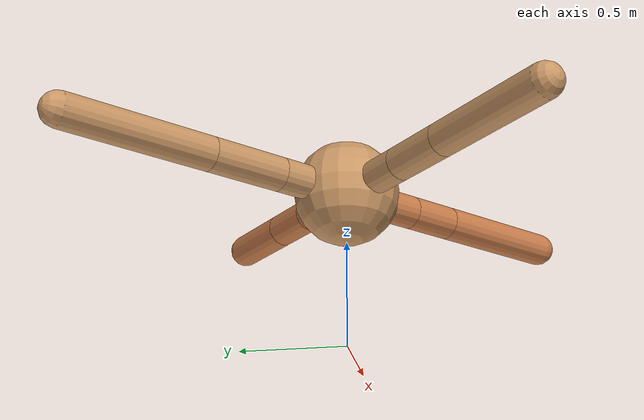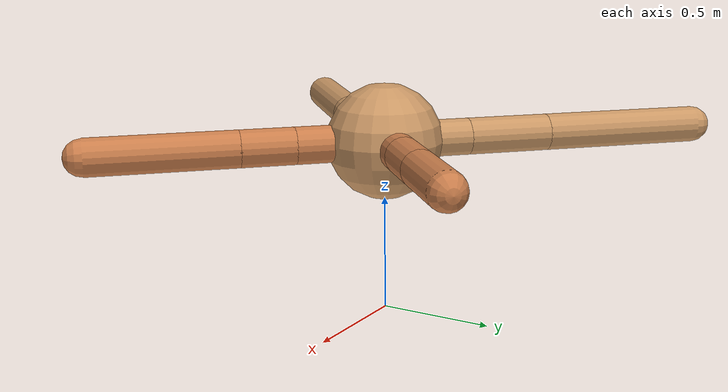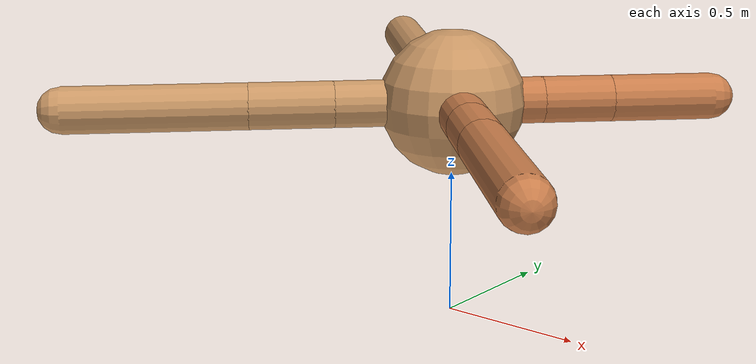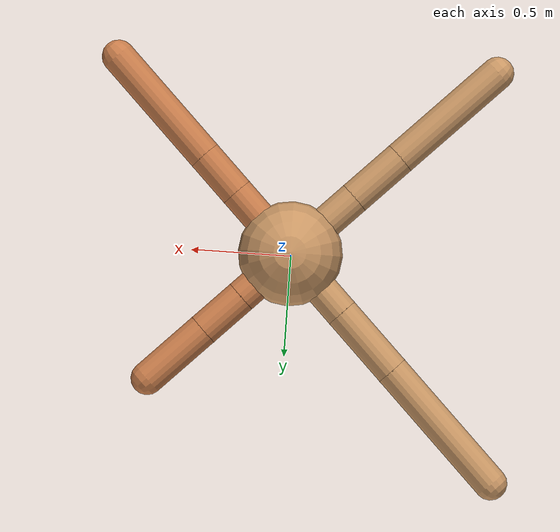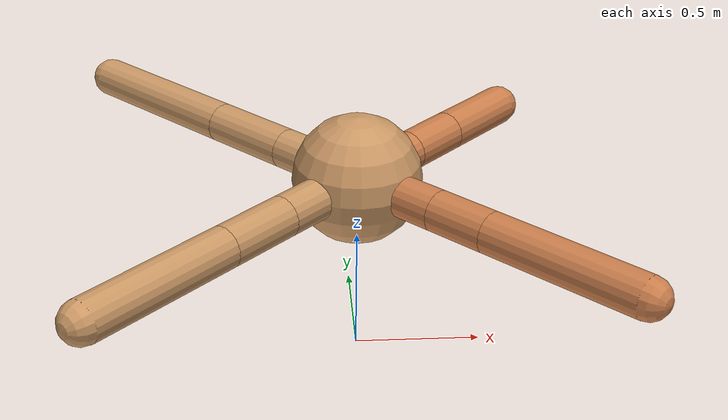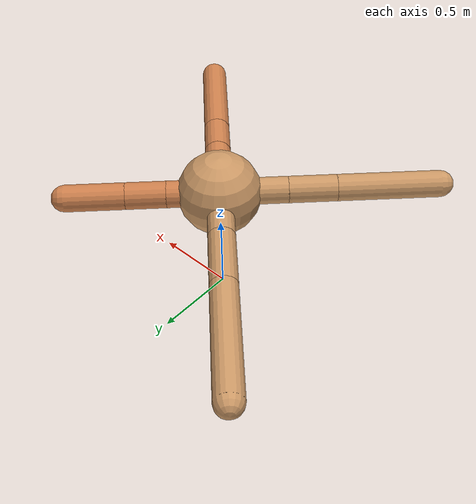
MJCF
<mujoco model="ant">
  <compiler angle="degree" coordinate="local" inertiafromgeom="true" />
  <option integrator="RK4" timestep="0.01" />
  <custom>
    <numeric data="0.0 0.0 0.55 1.0 0.0 0.0 0.0 0.0 1.0 0.0 -1.0 0.0 -1.0 0.0 1.0" name="init_qpos" />
  </custom>
  <default>
    <joint armature="1" damping="1" limited="true" />
    <geom conaffinity="0" condim="3" density="5.0" friction="1.5 0.1 0.1" margin="0.01" rgba="0.8 0.6 0.4 1" />
  </default>
  <worldbody>
    <body name="torso" pos="0 0 0.75">
      <geom name="torso_geom" pos="0 0 0" size="0.25" type="sphere" />

      <body name="front_left_leg" pos="0 0 0">
        <geom fromto="0.0 0.0 0.0 0.22019774283005483 0.22019774283005483 0.0" name="aux_1_geom" size="0.08" type="capsule" rgba=".8 .5 .3 1" />
        <body name="aux_1" pos="0.22019774283005483 0.22019774283005483 0.0">
          <joint axis="0 0 1" name="hip_1" pos="0.0 0.0 0.0" range="-40 40" type="hinge" />
          <geom fromto="0.0 0.0 0.0 0.16911578844137373 0.16911578844137373 0.0" name="left_leg_geom" size="0.08" type="capsule" rgba=".8 .5 .3 1" />
          <body pos="0.16911578844137373 0.16911578844137373 0.0" name="front_left_foot">
            <joint axis="-1 1 0" name="ankle_1" pos="0.0 0.0 0.0" range="30 100" type="hinge" />
            <geom fromto="0.0 0.0 0.0 0.24934551219040532 0.24934551219040532 0.0" name="left_ankle_geom" size="0.08" type="capsule" rgba=".8 .5 .3 1" />
          </body>
        </body>
      </body>
      <body name="front_right_leg" pos="0 0 0">
        <geom fromto="0.0 0.0 0.0 -0.2645441485378586 0.2645441485378586 0.0" name="aux_2_geom" size="0.08" type="capsule" />
        <body name="aux_2" pos="-0.2645441485378586 0.2645441485378586 0.0">
          <joint axis="0 0 1" name="hip_2" pos="0.0 0.0 0.0" range="-40 40" type="hinge" />
          <geom fromto="0.0 0.0 0.0 -0.2568321909108138 0.2568321909108138 0.0" name="right_leg_geom" size="0.08" type="capsule" />
          <body pos="-0.2568321909108138 0.2568321909108138 0.0" name="front_right_foot">
            <joint axis="1 1 0" name="ankle_2" pos="0.0 0.0 0.0" range="-100 -30" type="hinge" />
            <geom fromto="0.0 0.0 0.0 -0.5050948439265843 0.5050948439265843 0.0" name="right_ankle_geom" size="0.08" type="capsule" />
          </body>
        </body>
      </body>
      <body name="left_back_leg" pos="0 0 0">
        <geom fromto="0.0 0.0 0.0 -0.2857255395392125 -0.2857255395392125 0.0" name="aux_3_geom" size="0.08" type="capsule" />
        <body name="aux_3" pos="-0.2857255395392125 -0.2857255395392125 0.0">
          <joint axis="0 0 1" name="hip_3" pos="0.0 0.0 0.0" range="-40 40" type="hinge" />
          <geom fromto="0.0 0.0 0.0 -0.20407796656990707 -0.20407796656990707 0.0" name="back_leg_geom" size="0.08" type="capsule" />
          <body pos="-0.20407796656990707 -0.20407796656990707 0.0" name="left_back_foot">
            <joint axis="-1 1 0" name="ankle_3" pos="0.0 0.0 0.0" range="-100 -30" type="hinge" />
            <geom fromto="0.0 0.0 0.0 -0.4362420942758126 -0.4362420942758126 0.0" name="third_ankle_geom" size="0.08" type="capsule" />
          </body>
        </body>
      </body>
      <body name="right_back_leg" pos="0 0 0">
        <geom fromto="0.0 0.0 0.0 0.27391262199591776 -0.27391262199591776 0.0" name="aux_4_geom" size="0.08" type="capsule" rgba=".8 .5 .3 1" />
        <body name="aux_4" pos="0.27391262199591776 -0.27391262199591776 0.0">
          <joint axis="0 0 1" name="hip_4" pos="0.0 0.0 0.0" range="-40 40" type="hinge" />
          <geom fromto="0.0 0.0 0.0 0.16499466700645915 -0.16499466700645915 0.0" name="rightback_leg_geom" size="0.08" type="capsule" rgba=".8 .5 .3 1" />
          <body pos="0.16499466700645915 -0.16499466700645915 0.0" name="right_back_foot">
            <joint axis="1 1 0" name="ankle_4" pos="0.0 0.0 0.0" range="30 100" type="hinge" />
            <geom fromto="0.0 0.0 0.0 0.44382590492193685 -0.44382590492193685 0.0" name="fourth_ankle_geom" size="0.08" type="capsule" rgba=".8 .5 .3 1" />
          </body>
        </body>
      </body>
    </body>
  </worldbody>
  <actuator>
    <motor ctrllimited="true" ctrlrange="-1.0 1.0" joint="hip_4" gear="150" />
    <motor ctrllimited="true" ctrlrange="-1.0 1.0" joint="ankle_4" gear="150" />
    <motor ctrllimited="true" ctrlrange="-1.0 1.0" joint="hip_1" gear="150" />
    <motor ctrllimited="true" ctrlrange="-1.0 1.0" joint="ankle_1" gear="150" />
    <motor ctrllimited="true" ctrlrange="-1.0 1.0" joint="hip_2" gear="150" />
    <motor ctrllimited="true" ctrlrange="-1.0 1.0" joint="ankle_2" gear="150" />
    <motor ctrllimited="true" ctrlrange="-1.0 1.0" joint="hip_3" gear="150" />
    <motor ctrllimited="true" ctrlrange="-1.0 1.0" joint="ankle_3" gear="150" />
  </actuator>
</mujoco>
